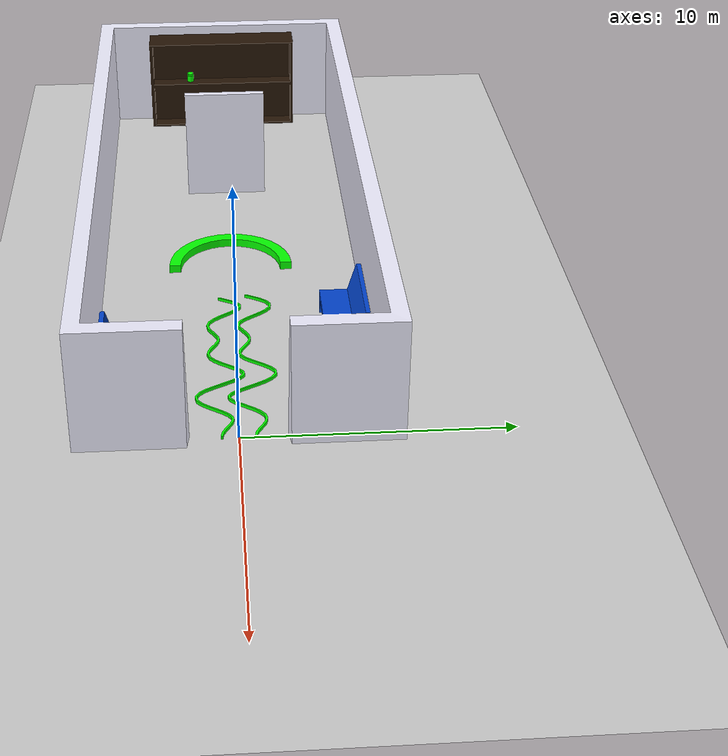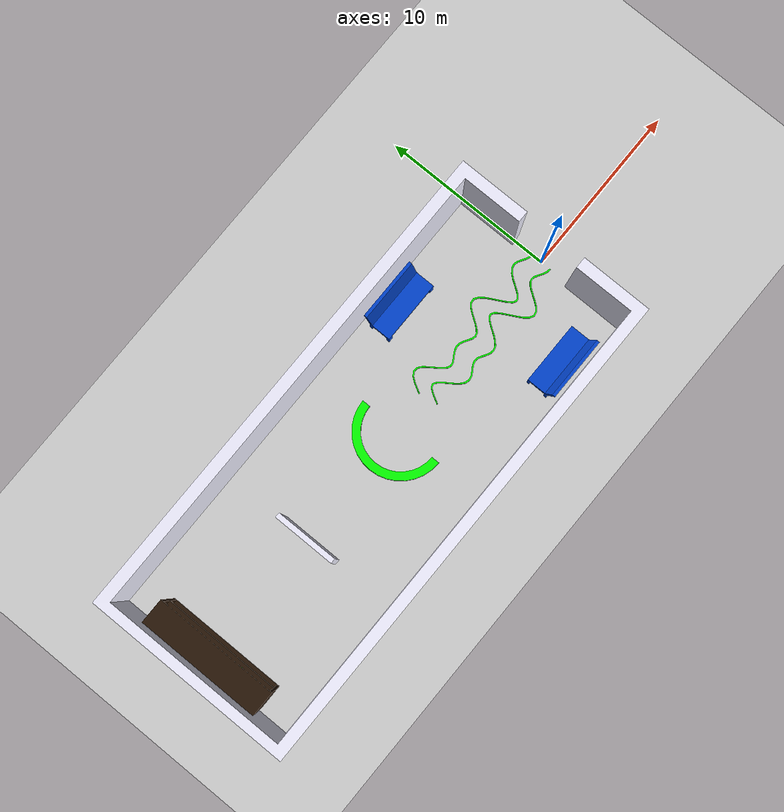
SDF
<?xml version="1.0"?>
<sdf version="1.4">
  <world name="default">
    <include>
      <uri>model://ground_plane</uri>
    </include>
    <include>
      <uri>model://sun</uri>
    </include>
      <include>
      <uri>model://arena_task3</uri>
      <pose>0.0 0 -0.1 0 0 0</pose>
    </include>
  </world>
</sdf>

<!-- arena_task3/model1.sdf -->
<sdf version="1.6">
  <model name="arena_task3">
    <pose>0 0 0  0 0 0</pose>
    <static>true</static>
    <link name="link">
      <collision name="colision2">
        <geometry>
          <mesh>
            <uri>model://arena_task3/meshes/Map2_triangulated.dae</uri>
            <scale>1 1 1</scale>
          </mesh>
        </geometry>
      </collision>

      <visual name="visual2">
        <cast_shadows>true</cast_shadows>
        <geometry>
          <mesh>
            <uri>model://arena_task3/meshes/Map2_triangulated.dae</uri>
            <scale>1 1 1</scale>
          </mesh>
        </geometry>
      </visual>

    </link>
  </model>
</sdf>
